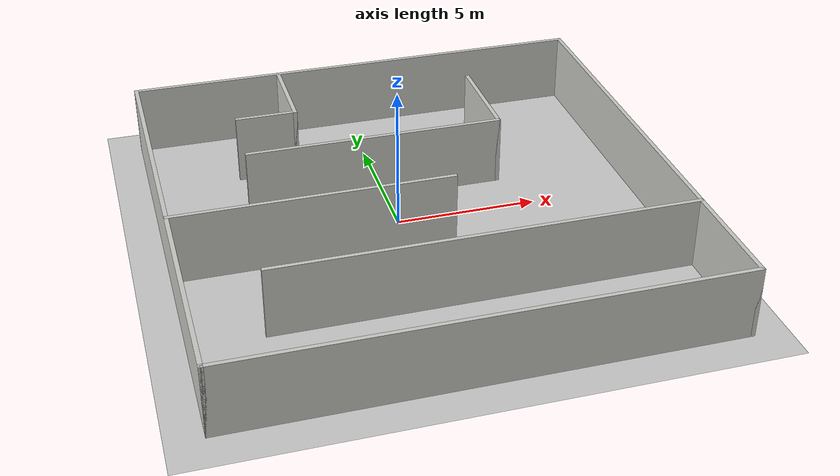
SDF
<sdf version="1.7">
 <world name="default">
  <light name="sun" type="directional">
   <pose>0 0 10 0 -0 0</pose>
   <diffuse>0.8 0.8 0.8 1</diffuse>
   <specular>0.2 0.2 0.2 1</specular>
   <attenuation>
    <range>1000</range>
    <constant>0.9</constant>
    <linear>0.01</linear>
    <quadratic>0.001</quadratic>
   </attenuation>
   <direction>-0.5 0.1 -0.9</direction>
   <spot><inner_angle>0</inner_angle><outer_angle>0</outer_angle><falloff>0</falloff></spot>
  </light>
  <model name="ground_plane">
   <static>1</static>
   <link name="link">
    <collision name="collision">
     <geometry><plane><normal>0 0 1</normal><size>100 100</size></plane></geometry>
     <surface><friction><ode><mu>100</mu><mu2>50</mu2></ode></friction></surface>
    </collision>
    <visual name="visual">
     <cast_shadows>0</cast_shadows>
     <geometry><plane><normal>0 0 1</normal><size>100 100</size></plane></geometry>
     <material>
      <script><uri>file://media/materials/scripts/gazebo.material</uri><name>Gazebo/Grey</name></script>
     </material>
    </visual>
   </link>
  </model>
  <gravity>0 0 -9.8</gravity>
  <magnetic_field>6e-06 2.3e-05 -4.2e-05</magnetic_field>
  <atmosphere type="adiabatic"/>
  <physics type="ode">
   <max_step_size>0.001</max_step_size>
   <real_time_factor>1</real_time_factor>
   <real_time_update_rate>1000</real_time_update_rate>
  </physics>
  <scene><ambient>0.4 0.4 0.4 1</ambient><background>0.7 0.7 0.7 1</background><shadows>1</shadows></scene>
  <audio><device>default</device></audio>
  <spherical_coordinates>
   <surface_model>EARTH_WGS84</surface_model>
   <latitude_deg>0</latitude_deg>
   <longitude_deg>0</longitude_deg>
   <elevation>0</elevation>
   <heading_deg>0</heading_deg>
  </spherical_coordinates>
  <model name="test_AMR_1">
   <pose>0.387686 -0.778643 0 0 -0 0</pose>
   <link name="Wall_11">
    <collision name="Wall_11_Collision">
     <geometry><box><size>2.25 0.15 2.5</size></box></geometry>
     <pose>0 0 1.25 0 -0 0</pose>
    </collision>
    <visual name="Wall_11_Visual">
     <pose>0 0 1.25 0 -0 0</pose>
     <geometry><box><size>2.25 0.15 2.5</size></box></geometry>
     <material>
      <script><uri>file://media/materials/scripts/gazebo.material</uri><name>Gazebo/CeilingTiled</name></script>
      <ambient>1 1 1 1</ambient>
     </material>
     <meta><layer>0</layer></meta>
    </visual>
    <pose>-4.10682 5.2215 0 0 -0 0</pose>
   </link>
   <link name="Wall_12">
    <collision name="Wall_12_Collision">
     <geometry><box><size>3.25 0.15 2.5</size></box></geometry>
     <pose>0 0 1.25 0 -0 0</pose>
    </collision>
    <visual name="Wall_12_Visual">
     <pose>0 0 1.25 0 -0 0</pose>
     <geometry><box><size>3.25 0.15 2.5</size></box></geometry>
     <material>
      <script><uri>file://media/materials/scripts/gazebo.material</uri><name>Gazebo/CeilingTiled</name></script>
      <ambient>1 1 1 1</ambient>
     </material>
     <meta><layer>0</layer></meta>
    </visual>
    <pose>-3.05682 6.7715 0 0 -0 1.5708</pose>
   </link>
   <link name="Wall_14">
    <collision name="Wall_14_Collision">
     <geometry><box><size>9.25 0.15 2.5</size></box></geometry>
     <pose>0 0 1.25 0 -0 0</pose>
    </collision>
    <visual name="Wall_14_Visual">
     <pose>0 0 1.25 0 -0 0</pose>
     <geometry><box><size>9.25 0.15 2.5</size></box></geometry>
     <material>
      <script><uri>file://media/materials/scripts/gazebo.material</uri><name>Gazebo/CeilingTiled</name></script>
      <ambient>1 1 1 1</ambient>
     </material>
     <meta><layer>0</layer></meta>
    </visual>
    <pose>-0.687735 2.63234 0 0 -0 0</pose>
   </link>
   <link name="Wall_15">
    <collision name="Wall_15_Collision">
     <geometry><box><size>3.75 0.15 2.5</size></box></geometry>
     <pose>0 0 1.25 0 -0 0</pose>
    </collision>
    <visual name="Wall_15_Visual">
     <pose>0 0 1.25 0 -0 0</pose>
     <geometry><box><size>3.75 0.15 2.5</size></box></geometry>
     <material>
      <script><uri>file://media/materials/scripts/gazebo.material</uri><name>Gazebo/CeilingTiled</name></script>
      <ambient>1 1 1 1</ambient>
     </material>
     <meta><layer>0</layer></meta>
    </visual>
    <pose>3.86226 4.43234 0 0 -0 1.5708</pose>
   </link>
   <link name="Wall_17">
    <collision name="Wall_17_Collision">
     <geometry><box><size>9.75 0.15 2.5</size></box></geometry>
     <pose>0 0 1.25 0 -0 0</pose>
    </collision>
    <visual name="Wall_17_Visual">
     <pose>0 0 1.25 0 -0 0</pose>
     <geometry><box><size>9.75 0.15 2.5</size></box></geometry>
     <material>
      <script><uri>file://media/materials/scripts/gazebo.material</uri><name>Gazebo/CeilingTiled</name></script>
      <ambient>1 1 1 1</ambient>
     </material>
     <meta><layer>0</layer></meta>
    </visual>
    <pose>-3.6053 -0.685018 0 0 -0 3.14159</pose>
   </link>
   <link name="Wall_19">
    <collision name="Wall_19_Collision">
     <geometry><box><size>14.5 0.15 2.5</size></box></geometry>
     <pose>0 0 1.25 0 -0 0</pose>
    </collision>
    <visual name="Wall_19_Visual">
     <pose>0 0 1.25 0 -0 0</pose>
     <geometry><box><size>14.5 0.15 2.5</size></box></geometry>
     <material>
      <script><uri>file://media/materials/scripts/gazebo.material</uri><name>Gazebo/CeilingTiled</name></script>
      <ambient>1 1 1 1</ambient>
     </material>
     <meta><layer>0</layer></meta>
    </visual>
    <pose>1.22079 -4.36648 0 0 -0 3.14159</pose>
   </link>
   <link name="Wall_6">
    <collision name="Wall_6_Collision">
     <geometry><box><size>17 0.15 2.5</size></box></geometry>
     <pose>0 0 1.25 0 -0 0</pose>
    </collision>
    <visual name="Wall_6_Visual">
     <pose>0 0 1.25 0 -0 0</pose>
     <geometry><box><size>17 0.15 2.5</size></box></geometry>
     <material>
      <script><uri>file://media/materials/scripts/gazebo.material</uri><name>Gazebo/CeilingTiled</name></script>
      <ambient>1 1 1 1</ambient>
     </material>
     <meta><layer>0</layer></meta>
    </visual>
    <pose>-8.425 0 0 0 -0 -1.5708</pose>
   </link>
   <link name="Wall_7">
    <collision name="Wall_7_Collision">
     <geometry><box><size>17 0.15 2.5</size></box></geometry>
     <pose>0 0 1.25 0 -0 0</pose>
    </collision>
    <visual name="Wall_7_Visual">
     <pose>0 0 1.25 0 -0 0</pose>
     <geometry><box><size>17 0.15 2.5</size></box></geometry>
     <material>
      <script><uri>file://media/materials/scripts/gazebo.material</uri><name>Gazebo/CeilingTiled</name></script>
      <ambient>1 1 1 1</ambient>
     </material>
     <meta><layer>0</layer></meta>
    </visual>
    <pose>0 -8.425 0 0 -0 0</pose>
   </link>
   <link name="Wall_8">
    <collision name="Wall_8_Collision">
     <geometry><box><size>17 0.15 2.5</size></box></geometry>
     <pose>0 0 1.25 0 -0 0</pose>
    </collision>
    <visual name="Wall_8_Visual">
     <pose>0 0 1.25 0 -0 0</pose>
     <geometry><box><size>17 0.15 2.5</size></box></geometry>
     <material>
      <script><uri>file://media/materials/scripts/gazebo.material</uri><name>Gazebo/CeilingTiled</name></script>
      <ambient>1 1 1 1</ambient>
     </material>
     <meta><layer>0</layer></meta>
    </visual>
    <pose>8.425 0 0 0 -0 1.5708</pose>
   </link>
   <link name="Wall_9">
    <collision name="Wall_9_Collision">
     <geometry><box><size>17 0.15 2.5</size></box></geometry>
     <pose>0 0 1.25 0 -0 0</pose>
    </collision>
    <visual name="Wall_9_Visual">
     <pose>0 0 1.25 0 -0 0</pose>
     <geometry><box><size>17 0.15 2.5</size></box></geometry>
     <material>
      <script><uri>file://media/materials/scripts/gazebo.material</uri><name>Gazebo/CeilingTiled</name></script>
      <ambient>1 1 1 1</ambient>
     </material>
     <meta><layer>0</layer></meta>
    </visual>
    <pose>0 8.425 0 0 -0 3.14159</pose>
   </link>
   <static>1</static>
  </model>
 </world>
</sdf>
